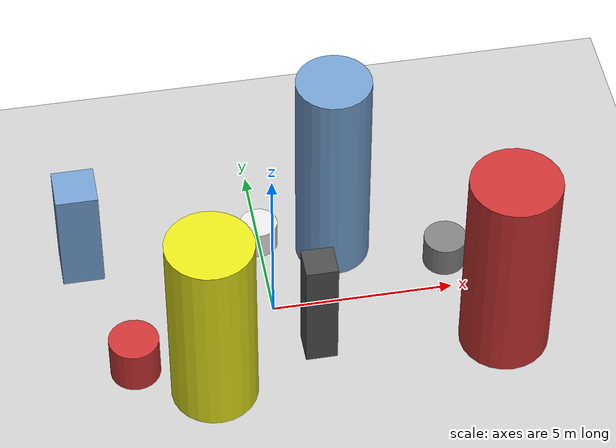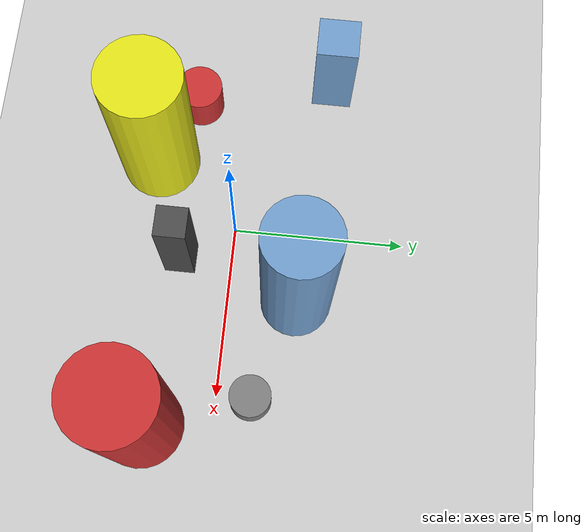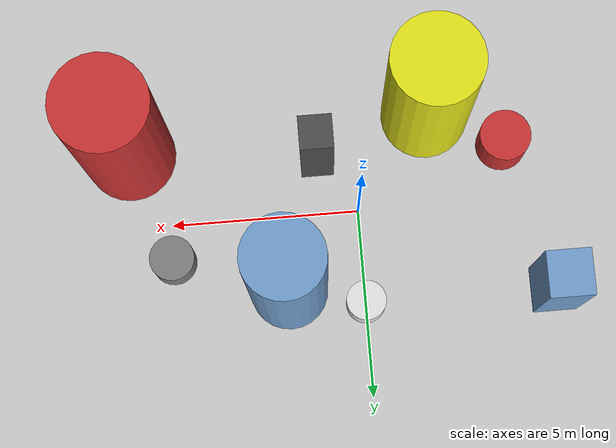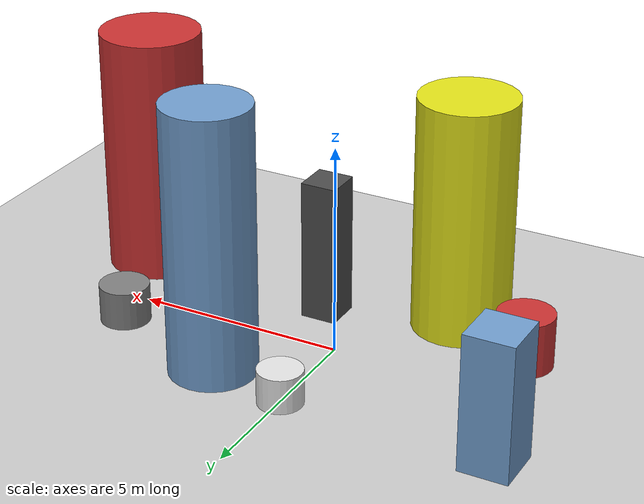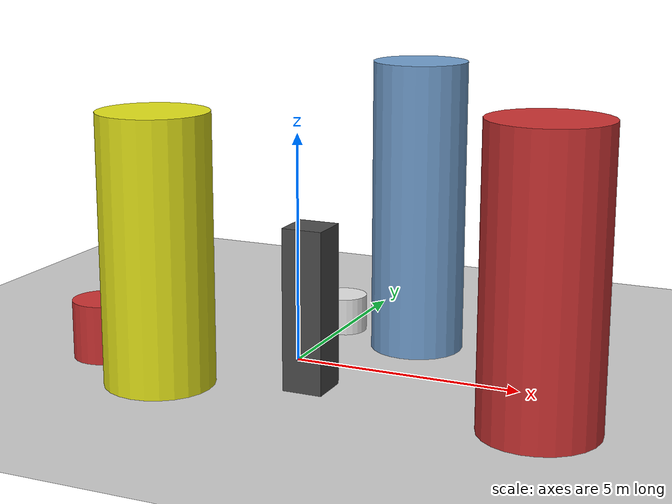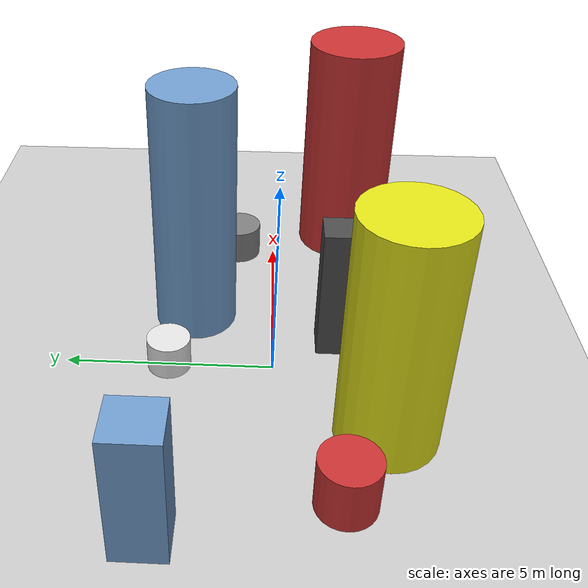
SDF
<?xml version='1.0'?>
<sdf version='1.6'>
  <world name='routeA_rl_v1__support_expansion__rl_val__mixed_3d_low_density_route__000160'>
    <!-- Sun light -->
    <light name='sun' type='directional'>
      <cast_shadows>1</cast_shadows>
      <pose>0 0 10 0 0 0</pose>
      <diffuse>0.8 0.8 0.8 1</diffuse>
      <specular>0.2 0.2 0.2 1</specular>
      <attenuation>
        <range>1000</range>
        <constant>0.9</constant>
        <linear>0.01</linear>
        <quadratic>0.001</quadratic>
      </attenuation>
      <direction>-0.5 0.1 -0.9</direction>
    </light>

    <!-- Ground plane -->
    <model name='ground_plane'>
      <static>1</static>
      <link name='link'>
        <collision name='collision'>
          <geometry>
            <plane>
              <normal>0 0 1</normal>
              <size>100 100</size>
            </plane>
          </geometry>
          <surface>
            <contact>
              <collide_bitmask>65535</collide_bitmask>
              <ode/>
            </contact>
            <friction>
              <ode>
                <mu>100</mu>
                <mu2>50</mu2>
              </ode>
              <torsional><ode/></torsional>
            </friction>
            <bounce/>
          </surface>
          <max_contacts>10</max_contacts>
        </collision>
        <visual name='visual'>
          <cast_shadows>0</cast_shadows>
          <geometry>
            <plane>
              <normal>0 0 1</normal>
              <size>100 100</size>
            </plane>
          </geometry>
          <material>
            <script>
              <uri>file://media/materials/scripts/gazebo.material</uri>
              <n>Gazebo/Grey</n>
            </script>
          </material>
        </visual>
      </link>
    </model>

    <!-- Environment -->
    <magnetic_field>6e-06 2.3e-05 -4.2e-05</magnetic_field>
    <atmosphere type='adiabatic'/>
    <physics name='default_physics' default='0' type='ode'>
      <gravity>0 0 -9.8</gravity>
      <max_step_size>0.004</max_step_size>
      <real_time_factor>1</real_time_factor>
      <real_time_update_rate>250</real_time_update_rate>
    </physics>
    <scene>
      <ambient>0.4 0.4 0.4 1</ambient>
      <background>0.7 0.7 0.7 1</background>
      <shadows>1</shadows>
    </scene>
    <wind/>
    <spherical_coordinates>
      <surface_model>EARTH_WGS84</surface_model>
      <latitude_deg>0</latitude_deg>
      <longitude_deg>0</longitude_deg>
      <elevation>0</elevation>
      <heading_deg>0</heading_deg>
    </spherical_coordinates>

    <!-- ============ OBSTACLES (8) ============ -->
    <model name='low_obs_0'>
      <static>1</static>
      <link name='link'>
        <visual name='visual'>
          <geometry>
            <cylinder>
              <radius>0.6775</radius>
              <length>1.2939</length>
            </cylinder>
          </geometry>
          <material>
            <script>
              <n>Gazebo/Red</n>
              <uri>file://media/materials/scripts/gazebo.material</uri>
            </script>
            <ambient>0.8 0.2 0.2 1</ambient>
          </material>
        </visual>
        <collision name='collision'>
          <geometry>
            <cylinder>
              <radius>0.6775</radius>
              <length>1.2939</length>
            </cylinder>
          </geometry>
          <max_contacts>10</max_contacts>
          <surface>
            <contact><ode/></contact>
            <bounce/>
            <friction>
              <ode><mu>1</mu><mu2>1</mu2></ode>
              <torsional><ode/></torsional>
            </friction>
          </surface>
        </collision>
      </link>
      <pose>-4.0000 -1.5000 0.6469 0 0 0.0000</pose>
    </model>

    <model name='low_obs_1'>
      <static>1</static>
      <link name='link'>
        <visual name='visual'>
          <geometry>
            <cylinder>
              <radius>0.5258</radius>
              <length>0.8336</length>
            </cylinder>
          </geometry>
          <material>
            <script>
              <n>Gazebo/White</n>
              <uri>file://media/materials/scripts/gazebo.material</uri>
            </script>
            <ambient>0.9 0.9 0.9 1</ambient>
          </material>
        </visual>
        <collision name='collision'>
          <geometry>
            <cylinder>
              <radius>0.5258</radius>
              <length>0.8336</length>
            </cylinder>
          </geometry>
          <max_contacts>10</max_contacts>
          <surface>
            <contact><ode/></contact>
            <bounce/>
            <friction>
              <ode><mu>1</mu><mu2>1</mu2></ode>
              <torsional><ode/></torsional>
            </friction>
          </surface>
        </collision>
      </link>
      <pose>0.0000 2.5000 0.4168 0 0 0.0000</pose>
    </model>

    <model name='low_obs_2'>
      <static>1</static>
      <link name='link'>
        <visual name='visual'>
          <geometry>
            <cylinder>
              <radius>0.5952</radius>
              <length>0.9207</length>
            </cylinder>
          </geometry>
          <material>
            <script>
              <n>Gazebo/Grey</n>
              <uri>file://media/materials/scripts/gazebo.material</uri>
            </script>
            <ambient>0.5 0.5 0.5 1</ambient>
          </material>
        </visual>
        <collision name='collision'>
          <geometry>
            <cylinder>
              <radius>0.5952</radius>
              <length>0.9207</length>
            </cylinder>
          </geometry>
          <max_contacts>10</max_contacts>
          <surface>
            <contact><ode/></contact>
            <bounce/>
            <friction>
              <ode><mu>1</mu><mu2>1</mu2></ode>
              <torsional><ode/></torsional>
            </friction>
          </surface>
        </collision>
      </link>
      <pose>5.0000 1.0000 0.4603 0 0 0.0000</pose>
    </model>

    <model name='tall_obs_0'>
      <static>1</static>
      <link name='link'>
        <visual name='visual'>
          <geometry>
            <cylinder>
              <radius>1.1687</radius>
              <length>5.7038</length>
            </cylinder>
          </geometry>
          <material>
            <script>
              <n>Gazebo/Yellow</n>
              <uri>file://media/materials/scripts/gazebo.material</uri>
            </script>
            <ambient>0.9 0.9 0.1 1</ambient>
          </material>
        </visual>
        <collision name='collision'>
          <geometry>
            <cylinder>
              <radius>1.1687</radius>
              <length>5.7038</length>
            </cylinder>
          </geometry>
          <max_contacts>10</max_contacts>
          <surface>
            <contact><ode/></contact>
            <bounce/>
            <friction>
              <ode><mu>1</mu><mu2>1</mu2></ode>
              <torsional><ode/></torsional>
            </friction>
          </surface>
        </collision>
      </link>
      <pose>-2.0000 -2.5000 2.8519 0 0 0.0000</pose>
    </model>

    <model name='tall_obs_1'>
      <static>1</static>
      <link name='link'>
        <visual name='visual'>
          <geometry>
            <cylinder>
              <radius>1.0254</radius>
              <length>6.4125</length>
            </cylinder>
          </geometry>
          <material>
            <script>
              <n>Gazebo/Blue</n>
              <uri>file://media/materials/scripts/gazebo.material</uri>
            </script>
            <ambient>0.447 0.624 0.812 1</ambient>
          </material>
        </visual>
        <collision name='collision'>
          <geometry>
            <cylinder>
              <radius>1.0254</radius>
              <length>6.4125</length>
            </cylinder>
          </geometry>
          <max_contacts>10</max_contacts>
          <surface>
            <contact><ode/></contact>
            <bounce/>
            <friction>
              <ode><mu>1</mu><mu2>1</mu2></ode>
              <torsional><ode/></torsional>
            </friction>
          </surface>
        </collision>
      </link>
      <pose>2.0000 2.0000 3.2062 0 0 0.0000</pose>
    </model>

    <model name='tall_obs_2'>
      <static>1</static>
      <link name='link'>
        <visual name='visual'>
          <geometry>
            <cylinder>
              <radius>1.2182</radius>
              <length>6.0077</length>
            </cylinder>
          </geometry>
          <material>
            <script>
              <n>Gazebo/Red</n>
              <uri>file://media/materials/scripts/gazebo.material</uri>
            </script>
            <ambient>0.8 0.2 0.2 1</ambient>
          </material>
        </visual>
        <collision name='collision'>
          <geometry>
            <cylinder>
              <radius>1.2182</radius>
              <length>6.0077</length>
            </cylinder>
          </geometry>
          <max_contacts>10</max_contacts>
          <surface>
            <contact><ode/></contact>
            <bounce/>
            <friction>
              <ode><mu>1</mu><mu2>1</mu2></ode>
              <torsional><ode/></torsional>
            </friction>
          </surface>
        </collision>
      </link>
      <pose>6.0000 -2.0000 3.0039 0 0 0.0000</pose>
    </model>

    <model name='med_obs_0'>
      <static>1</static>
      <link name='link'>
        <visual name='visual'>
          <geometry>
            <box>
              <size>1.1496 1.1895 3.1943</size>
            </box>
          </geometry>
          <material>
            <script>
              <n>Gazebo/Blue</n>
              <uri>file://media/materials/scripts/gazebo.material</uri>
            </script>
            <ambient>0.447 0.624 0.812 1</ambient>
          </material>
        </visual>
        <collision name='collision'>
          <geometry>
            <box>
              <size>1.1496 1.1895 3.1943</size>
            </box>
          </geometry>
          <max_contacts>10</max_contacts>
          <surface>
            <contact><ode/></contact>
            <bounce/>
            <friction>
              <ode><mu>1</mu><mu2>1</mu2></ode>
              <torsional><ode/></torsional>
            </friction>
          </surface>
        </collision>
      </link>
      <pose>-5.0000 2.5000 1.5971 0 0 0.0000</pose>
    </model>

    <model name='med_obs_1'>
      <static>1</static>
      <link name='link'>
        <visual name='visual'>
          <geometry>
            <box>
              <size>0.8636 0.8758 3.4249</size>
            </box>
          </geometry>
          <material>
            <script>
              <n>Gazebo/DarkGrey</n>
              <uri>file://media/materials/scripts/gazebo.material</uri>
            </script>
            <ambient>0.3 0.3 0.3 1</ambient>
          </material>
        </visual>
        <collision name='collision'>
          <geometry>
            <box>
              <size>0.8636 0.8758 3.4249</size>
            </box>
          </geometry>
          <max_contacts>10</max_contacts>
          <surface>
            <contact><ode/></contact>
            <bounce/>
            <friction>
              <ode><mu>1</mu><mu2>1</mu2></ode>
              <torsional><ode/></torsional>
            </friction>
          </surface>
        </collision>
      </link>
      <pose>1.0000 -1.5000 1.7125 0 0 0.0000</pose>
    </model>

    <!-- GUI camera -->
    <gui fullscreen='0'>
      <camera name='user_camera'>
        <pose>-15 0 18 0 0.85 0.15</pose>
        <view_controller>orbit</view_controller>
        <projection_type>perspective</projection_type>
      </camera>
    </gui>
  </world>
</sdf>
